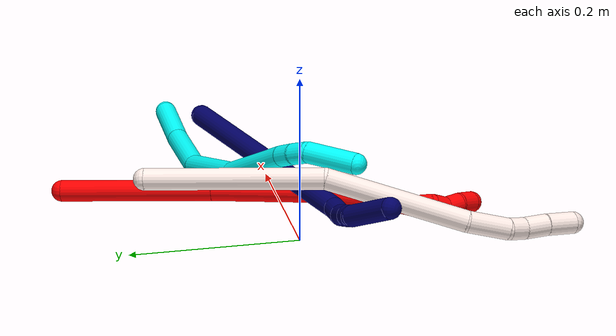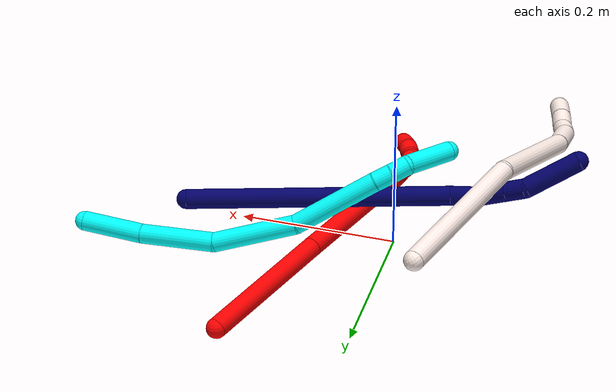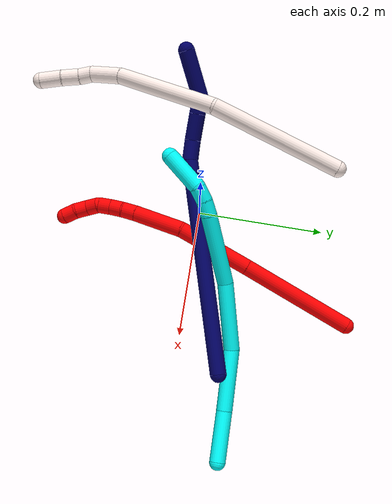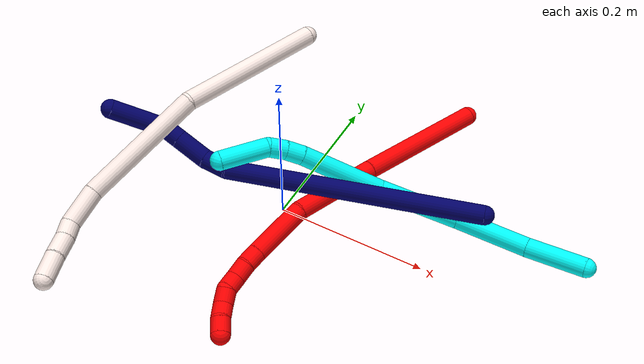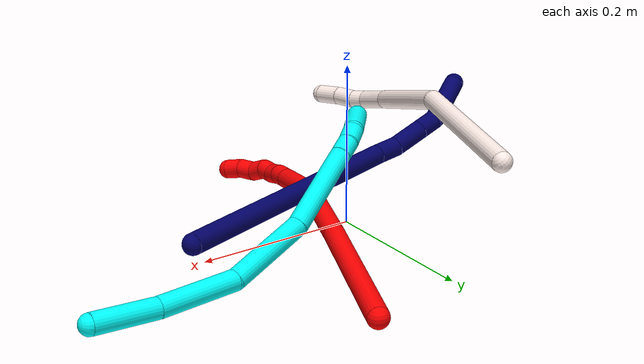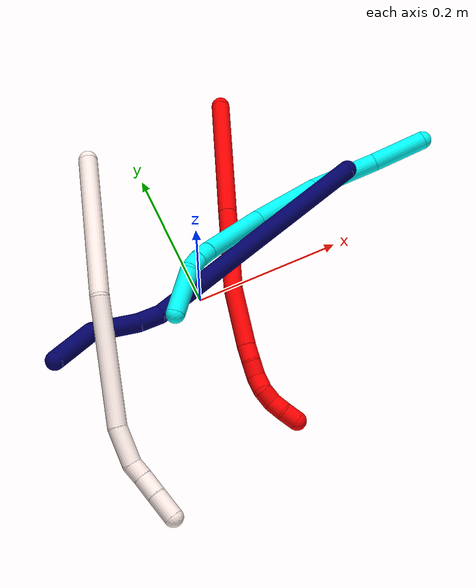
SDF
<sdf version="1.7">
 <world name="default">
  <model name="2">
   <static>0</static>
   <link name="2">
    <collision name="collision-cylinder-e_1_1_4">
     <pose>-0.027684 -0.085449 0.001557 1.55258 -0.313258 -0.307693</pose>
     <geometry><cylinder><radius>0.0125</radius><length>0.179671</length></cylinder></geometry>
     <surface>
      <friction><ode><mu>1.16</mu><mu2>1.16</mu2><slip1>0</slip1><slip2>0</slip2></ode></friction>
      <contact><ode><kp>1e+06</kp><kd>1</kd><max_vel>0</max_vel><min_depth>0.001</min_depth></ode></contact>
     </surface>
    </collision>
    <visual name="visual-cylinder-e_1_1_4">
     <pose>-0.027684 -0.085449 0.001557 1.55258 -0.313258 -0.307693</pose>
     <geometry><cylinder><radius>0.0125</radius><length>0.179671</length></cylinder></geometry>
     <material><ambient>1 0 0 1</ambient></material>
    </visual>
    <collision name="collision-cylinder-e_2_4_5">
     <pose>-0.073044 -0.227127 0.002657 1.57891 -0.304577 -0.307019</pose>
     <geometry><cylinder><radius>0.0125</radius><length>0.117886</length></cylinder></geometry>
     <surface>
      <friction><ode><mu>1.16</mu><mu2>1.16</mu2><slip1>0</slip1><slip2>0</slip2></ode></friction>
      <contact><ode><kp>1e+06</kp><kd>1</kd><max_vel>0</max_vel><min_depth>0.001</min_depth></ode></contact>
     </surface>
    </collision>
    <visual name="visual-cylinder-e_2_4_5">
     <pose>-0.073044 -0.227127 0.002657 1.57891 -0.304577 -0.307019</pose>
     <geometry><cylinder><radius>0.0125</radius><length>0.117886</length></cylinder></geometry>
     <material><ambient>1 0 0 1</ambient></material>
    </visual>
    <collision name="collision-cylinder-e_3_5_6">
     <pose>-0.096223 -0.321682 -0.005385 1.76619 -0.139933 -0.170209</pose>
     <geometry><cylinder><radius>0.0125</radius><length>0.078912</length></cylinder></geometry>
     <surface>
      <friction><ode><mu>1.16</mu><mu2>1.16</mu2><slip1>0</slip1><slip2>0</slip2></ode></friction>
      <contact><ode><kp>1e+06</kp><kd>1</kd><max_vel>0</max_vel><min_depth>0.001</min_depth></ode></contact>
     </surface>
    </collision>
    <visual name="visual-cylinder-e_3_5_6">
     <pose>-0.096223 -0.321682 -0.005385 1.76619 -0.139933 -0.170209</pose>
     <geometry><cylinder><radius>0.0125</radius><length>0.078912</length></cylinder></geometry>
     <material><ambient>1 0 0 1</ambient></material>
    </visual>
    <collision name="collision-cylinder-e_4_6_7">
     <pose>-0.102573 -0.370609 -0.014505 1.71463 -0.078902 -0.091138</pose>
     <geometry><cylinder><radius>0.0125</radius><length>0.021488</length></cylinder></geometry>
     <surface>
      <friction><ode><mu>1.16</mu><mu2>1.16</mu2><slip1>0</slip1><slip2>0</slip2></ode></friction>
      <contact><ode><kp>1e+06</kp><kd>1</kd><max_vel>0</max_vel><min_depth>0.001</min_depth></ode></contact>
     </surface>
    </collision>
    <visual name="visual-cylinder-e_4_6_7">
     <pose>-0.102573 -0.370609 -0.014505 1.71463 -0.078902 -0.091138</pose>
     <geometry><cylinder><radius>0.0125</radius><length>0.021488</length></cylinder></geometry>
     <material><ambient>1 0 0 1</ambient></material>
    </visual>
    <collision name="collision-cylinder-e_5_7_8">
     <pose>-0.10384 -0.391283 -0.019409 1.89346 -0.039499 -0.054849</pose>
     <geometry><cylinder><radius>0.0125</radius><length>0.021262</length></cylinder></geometry>
     <surface>
      <friction><ode><mu>1.16</mu><mu2>1.16</mu2><slip1>0</slip1><slip2>0</slip2></ode></friction>
      <contact><ode><kp>1e+06</kp><kd>1</kd><max_vel>0</max_vel><min_depth>0.001</min_depth></ode></contact>
     </surface>
    </collision>
    <visual name="visual-cylinder-e_5_7_8">
     <pose>-0.10384 -0.391283 -0.019409 1.89346 -0.039499 -0.054849</pose>
     <geometry><cylinder><radius>0.0125</radius><length>0.021262</length></cylinder></geometry>
     <material><ambient>1 0 0 1</ambient></material>
    </visual>
    <collision name="collision-cylinder-e_6_8_9">
     <pose>-0.103709 -0.411392 -0.023097 1.60258 0.054775 0.056543</pose>
     <geometry><cylinder><radius>0.0125</radius><length>0.02011</length></cylinder></geometry>
     <surface>
      <friction><ode><mu>1.16</mu><mu2>1.16</mu2><slip1>0</slip1><slip2>0</slip2></ode></friction>
      <contact><ode><kp>1e+06</kp><kd>1</kd><max_vel>0</max_vel><min_depth>0.001</min_depth></ode></contact>
     </surface>
    </collision>
    <visual name="visual-cylinder-e_6_8_9">
     <pose>-0.103709 -0.411392 -0.023097 1.60258 0.054775 0.056543</pose>
     <geometry><cylinder><radius>0.0125</radius><length>0.02011</length></cylinder></geometry>
     <material><ambient>1 0 0 1</ambient></material>
    </visual>
    <collision name="collision-cylinder-e_7_9_10">
     <pose>-0.099652 -0.429915 -0.027489 2.01822 0.356545 0.557731</pose>
     <geometry><cylinder><radius>0.0125</radius><length>0.020094</length></cylinder></geometry>
     <surface>
      <friction><ode><mu>1.16</mu><mu2>1.16</mu2><slip1>0</slip1><slip2>0</slip2></ode></friction>
      <contact><ode><kp>1e+06</kp><kd>1</kd><max_vel>0</max_vel><min_depth>0.001</min_depth></ode></contact>
     </surface>
    </collision>
    <visual name="visual-cylinder-e_7_9_10">
     <pose>-0.099652 -0.429915 -0.027489 2.01822 0.356545 0.557731</pose>
     <geometry><cylinder><radius>0.0125</radius><length>0.020094</length></cylinder></geometry>
     <material><ambient>1 0 0 1</ambient></material>
    </visual>
    <collision name="collision-cylinder-e_8_10_11">
     <pose>-0.091427 -0.447371 -0.031609 1.576 0.484382 0.486809</pose>
     <geometry><cylinder><radius>0.0125</radius><length>0.020266</length></cylinder></geometry>
     <surface>
      <friction><ode><mu>1.16</mu><mu2>1.16</mu2><slip1>0</slip1><slip2>0</slip2></ode></friction>
      <contact><ode><kp>1e+06</kp><kd>1</kd><max_vel>0</max_vel><min_depth>0.001</min_depth></ode></contact>
     </surface>
    </collision>
    <visual name="visual-cylinder-e_8_10_11">
     <pose>-0.091427 -0.447371 -0.031609 1.576 0.484382 0.486809</pose>
     <geometry><cylinder><radius>0.0125</radius><length>0.020266</length></cylinder></geometry>
     <material><ambient>1 0 0 1</ambient></material>
    </visual>
    <collision name="collision-cylinder-e_9_11_2">
     <pose>-0.080927 -0.464417 -0.033765 1.82614 0.605618 0.768658</pose>
     <geometry><cylinder><radius>0.0125</radius><length>0.020312</length></cylinder></geometry>
     <surface>
      <friction><ode><mu>1.16</mu><mu2>1.16</mu2><slip1>0</slip1><slip2>0</slip2></ode></friction>
      <contact><ode><kp>1e+06</kp><kd>1</kd><max_vel>0</max_vel><min_depth>0.001</min_depth></ode></contact>
     </surface>
    </collision>
    <visual name="visual-cylinder-e_9_11_2">
     <pose>-0.080927 -0.464417 -0.033765 1.82614 0.605618 0.768658</pose>
     <geometry><cylinder><radius>0.0125</radius><length>0.020312</length></cylinder></geometry>
     <material><ambient>1 0 0 1</ambient></material>
    </visual>
    <collision name="collision-sphere-2">
     <pose>-0.075145 -0.472496 -0.035874 0 -0 0</pose>
     <geometry><sphere><radius>0.0125</radius></sphere></geometry>
     <surface>
      <friction><ode><mu>1.16</mu><mu2>1.16</mu2><slip1>0</slip1><slip2>0</slip2></ode></friction>
      <contact><ode><kp>1e+06</kp><kd>1</kd><max_vel>0</max_vel><min_depth>0.001</min_depth></ode></contact>
     </surface>
    </collision>
    <visual name="visual-sphere-2">
     <pose>-0.075145 -0.472496 -0.035874 0 -0 0</pose>
     <geometry><sphere><radius>0.0125</radius></sphere></geometry>
     <material><ambient>1 0 0 1</ambient></material>
    </visual>
    <collision name="collision-sphere-11">
     <pose>-0.086708 -0.456338 -0.031656 0 -0 0</pose>
     <geometry><sphere><radius>0.0125</radius></sphere></geometry>
     <surface>
      <friction><ode><mu>1.16</mu><mu2>1.16</mu2><slip1>0</slip1><slip2>0</slip2></ode></friction>
      <contact><ode><kp>1e+06</kp><kd>1</kd><max_vel>0</max_vel><min_depth>0.001</min_depth></ode></contact>
     </surface>
    </collision>
    <visual name="visual-sphere-11">
     <pose>-0.086708 -0.456338 -0.031656 0 -0 0</pose>
     <geometry><sphere><radius>0.0125</radius></sphere></geometry>
     <material><ambient>1 0 0 1</ambient></material>
    </visual>
    <collision name="collision-sphere-10">
     <pose>-0.096145 -0.438404 -0.031562 0 -0 0</pose>
     <geometry><sphere><radius>0.0125</radius></sphere></geometry>
     <surface>
      <friction><ode><mu>1.16</mu><mu2>1.16</mu2><slip1>0</slip1><slip2>0</slip2></ode></friction>
      <contact><ode><kp>1e+06</kp><kd>1</kd><max_vel>0</max_vel><min_depth>0.001</min_depth></ode></contact>
     </surface>
    </collision>
    <visual name="visual-sphere-10">
     <pose>-0.096145 -0.438404 -0.031562 0 -0 0</pose>
     <geometry><sphere><radius>0.0125</radius></sphere></geometry>
     <material><ambient>1 0 0 1</ambient></material>
    </visual>
    <collision name="collision-sphere-9">
     <pose>-0.103159 -0.421427 -0.023416 0 -0 0</pose>
     <geometry><sphere><radius>0.0125</radius></sphere></geometry>
     <surface>
      <friction><ode><mu>1.16</mu><mu2>1.16</mu2><slip1>0</slip1><slip2>0</slip2></ode></friction>
      <contact><ode><kp>1e+06</kp><kd>1</kd><max_vel>0</max_vel><min_depth>0.001</min_depth></ode></contact>
     </surface>
    </collision>
    <visual name="visual-sphere-9">
     <pose>-0.103159 -0.421427 -0.023416 0 -0 0</pose>
     <geometry><sphere><radius>0.0125</radius></sphere></geometry>
     <material><ambient>1 0 0 1</ambient></material>
    </visual>
    <collision name="collision-sphere-4">
     <pose>-0.055367 -0.170899 0.003113 0 -0 0</pose>
     <geometry><sphere><radius>0.0125</radius></sphere></geometry>
     <surface>
      <friction><ode><mu>1.16</mu><mu2>1.16</mu2><slip1>0</slip1><slip2>0</slip2></ode></friction>
      <contact><ode><kp>1e+06</kp><kd>1</kd><max_vel>0</max_vel><min_depth>0.001</min_depth></ode></contact>
     </surface>
    </collision>
    <visual name="visual-sphere-4">
     <pose>-0.055367 -0.170899 0.003113 0 -0 0</pose>
     <geometry><sphere><radius>0.0125</radius></sphere></geometry>
     <material><ambient>1 0 0 1</ambient></material>
    </visual>
    <collision name="collision-sphere-1">
     <geometry><sphere><radius>0.0125</radius></sphere></geometry>
     <surface>
      <friction><ode><mu>1.16</mu><mu2>1.16</mu2><slip1>0</slip1><slip2>0</slip2></ode></friction>
      <contact><ode><kp>1e+06</kp><kd>1</kd><max_vel>0</max_vel><min_depth>0.001</min_depth></ode></contact>
     </surface>
    </collision>
    <visual name="visual-sphere-1">
     <geometry><sphere><radius>0.0125</radius></sphere></geometry>
     <material><ambient>1 0 0 1</ambient></material>
    </visual>
    <collision name="collision-sphere-8">
     <pose>-0.10426 -0.401358 -0.022778 0 -0 0</pose>
     <geometry><sphere><radius>0.0125</radius></sphere></geometry>
     <surface>
      <friction><ode><mu>1.16</mu><mu2>1.16</mu2><slip1>0</slip1><slip2>0</slip2></ode></friction>
      <contact><ode><kp>1e+06</kp><kd>1</kd><max_vel>0</max_vel><min_depth>0.001</min_depth></ode></contact>
     </surface>
    </collision>
    <visual name="visual-sphere-8">
     <pose>-0.10426 -0.401358 -0.022778 0 -0 0</pose>
     <geometry><sphere><radius>0.0125</radius></sphere></geometry>
     <material><ambient>1 0 0 1</ambient></material>
    </visual>
    <collision name="collision-sphere-5">
     <pose>-0.09072 -0.283355 0.002201 0 -0 0</pose>
     <geometry><sphere><radius>0.0125</radius></sphere></geometry>
     <surface>
      <friction><ode><mu>1.16</mu><mu2>1.16</mu2><slip1>0</slip1><slip2>0</slip2></ode></friction>
      <contact><ode><kp>1e+06</kp><kd>1</kd><max_vel>0</max_vel><min_depth>0.001</min_depth></ode></contact>
     </surface>
    </collision>
    <visual name="visual-sphere-5">
     <pose>-0.09072 -0.283355 0.002201 0 -0 0</pose>
     <geometry><sphere><radius>0.0125</radius></sphere></geometry>
     <material><ambient>1 0 0 1</ambient></material>
    </visual>
    <collision name="collision-sphere-6">
     <pose>-0.101726 -0.360009 -0.01297 0 -0 0</pose>
     <geometry><sphere><radius>0.0125</radius></sphere></geometry>
     <surface>
      <friction><ode><mu>1.16</mu><mu2>1.16</mu2><slip1>0</slip1><slip2>0</slip2></ode></friction>
      <contact><ode><kp>1e+06</kp><kd>1</kd><max_vel>0</max_vel><min_depth>0.001</min_depth></ode></contact>
     </surface>
    </collision>
    <visual name="visual-sphere-6">
     <pose>-0.101726 -0.360009 -0.01297 0 -0 0</pose>
     <geometry><sphere><radius>0.0125</radius></sphere></geometry>
     <material><ambient>1 0 0 1</ambient></material>
    </visual>
    <collision name="collision-sphere-7">
     <pose>-0.10342 -0.381209 -0.016041 0 -0 0</pose>
     <geometry><sphere><radius>0.0125</radius></sphere></geometry>
     <surface>
      <friction><ode><mu>1.16</mu><mu2>1.16</mu2><slip1>0</slip1><slip2>0</slip2></ode></friction>
      <contact><ode><kp>1e+06</kp><kd>1</kd><max_vel>0</max_vel><min_depth>0.001</min_depth></ode></contact>
     </surface>
    </collision>
    <visual name="visual-sphere-7">
     <pose>-0.10342 -0.381209 -0.016041 0 -0 0</pose>
     <geometry><sphere><radius>0.0125</radius></sphere></geometry>
     <material><ambient>1 0 0 1</ambient></material>
    </visual>
    <inertial>
     <pose>-0.066349 -0.238413 -0.005799 0 -0 0</pose>
     <mass>0.5</mass>
     <inertia>
      <ixx>0.000431</ixx>
      <ixy>0</ixy>
      <ixz>0</ixz>
      <iyy>-0.000166</iyy>
      <iyz>0</iyz>
      <izz>0.000847</izz>
     </inertia>
    </inertial>
   </link>
   <pose>0.145127 0.254556 0.024191 -0.04092 0.050781 -0.058553</pose>
  </model>
  <model name="3">
   <static>0</static>
   <link name="3">
    <collision name="collision-cylinder-e_1_1_4">
     <pose>-0.004501 -0.002953 -0.038275 3.0646 -0.116711 -1.97592</pose>
     <geometry><cylinder><radius>0.0125</radius><length>0.077304</length></cylinder></geometry>
     <surface>
      <friction><ode><mu>1.16</mu><mu2>1.16</mu2><slip1>0</slip1><slip2>0</slip2></ode></friction>
      <contact><ode><kp>1e+06</kp><kd>1</kd><max_vel>0</max_vel><min_depth>0.001</min_depth></ode></contact>
     </surface>
    </collision>
    <visual name="visual-cylinder-e_1_1_4">
     <pose>-0.004501 -0.002953 -0.038275 3.0646 -0.116711 -1.97592</pose>
     <geometry><cylinder><radius>0.0125</radius><length>0.077304</length></cylinder></geometry>
     <material><ambient>0.003922 1 0.996078 1</ambient></material>
    </visual>
    <collision name="collision-cylinder-e_2_4_5">
     <pose>-0.019633 -0.01013 -0.122929 3.05074 -0.224439 -2.37478</pose>
     <geometry><cylinder><radius>0.0125</radius><length>0.095536</length></cylinder></geometry>
     <surface>
      <friction><ode><mu>1.16</mu><mu2>1.16</mu2><slip1>0</slip1><slip2>0</slip2></ode></friction>
      <contact><ode><kp>1e+06</kp><kd>1</kd><max_vel>0</max_vel><min_depth>0.001</min_depth></ode></contact>
     </surface>
    </collision>
    <visual name="visual-cylinder-e_2_4_5">
     <pose>-0.019633 -0.01013 -0.122929 3.05074 -0.224439 -2.37478</pose>
     <geometry><cylinder><radius>0.0125</radius><length>0.095536</length></cylinder></geometry>
     <material><ambient>0.003922 1 0.996078 1</ambient></material>
    </visual>
    <collision name="collision-cylinder-e_3_5_6">
     <pose>-0.054434 -0.029356 -0.214394 2.8204 -0.470557 -1.95306</pose>
     <geometry><cylinder><radius>0.0125</radius><length>0.106621</length></cylinder></geometry>
     <surface>
      <friction><ode><mu>1.16</mu><mu2>1.16</mu2><slip1>0</slip1><slip2>0</slip2></ode></friction>
      <contact><ode><kp>1e+06</kp><kd>1</kd><max_vel>0</max_vel><min_depth>0.001</min_depth></ode></contact>
     </surface>
    </collision>
    <visual name="visual-cylinder-e_3_5_6">
     <pose>-0.054434 -0.029356 -0.214394 2.8204 -0.470557 -1.95306</pose>
     <geometry><cylinder><radius>0.0125</radius><length>0.106621</length></cylinder></geometry>
     <material><ambient>0.003922 1 0.996078 1</ambient></material>
    </visual>
    <collision name="collision-cylinder-e_4_6_7">
     <pose>-0.114604 -0.065471 -0.297287 2.63227 -0.693571 -1.89314</pose>
     <geometry><cylinder><radius>0.0125</radius><length>0.112624</length></cylinder></geometry>
     <surface>
      <friction><ode><mu>1.16</mu><mu2>1.16</mu2><slip1>0</slip1><slip2>0</slip2></ode></friction>
      <contact><ode><kp>1e+06</kp><kd>1</kd><max_vel>0</max_vel><min_depth>0.001</min_depth></ode></contact>
     </surface>
    </collision>
    <visual name="visual-cylinder-e_4_6_7">
     <pose>-0.114604 -0.065471 -0.297287 2.63227 -0.693571 -1.89314</pose>
     <geometry><cylinder><radius>0.0125</radius><length>0.112624</length></cylinder></geometry>
     <material><ambient>0.003922 1 0.996078 1</ambient></material>
    </visual>
    <collision name="collision-cylinder-e_5_7_8">
     <pose>-0.157049 -0.091671 -0.342873 2.56252 -0.606225 -1.61939</pose>
     <geometry><cylinder><radius>0.0125</radius><length>0.022622</length></cylinder></geometry>
     <surface>
      <friction><ode><mu>1.16</mu><mu2>1.16</mu2><slip1>0</slip1><slip2>0</slip2></ode></friction>
      <contact><ode><kp>1e+06</kp><kd>1</kd><max_vel>0</max_vel><min_depth>0.001</min_depth></ode></contact>
     </surface>
    </collision>
    <visual name="visual-cylinder-e_5_7_8">
     <pose>-0.157049 -0.091671 -0.342873 2.56252 -0.606225 -1.61939</pose>
     <geometry><cylinder><radius>0.0125</radius><length>0.022622</length></cylinder></geometry>
     <material><ambient>0.003922 1 0.996078 1</ambient></material>
    </visual>
    <collision name="collision-cylinder-e_6_8_9">
     <pose>-0.169402 -0.103426 -0.357888 2.39697 -0.540864 -1.23465</pose>
     <geometry><cylinder><radius>0.0125</radius><length>0.022954</length></cylinder></geometry>
     <surface>
      <friction><ode><mu>1.16</mu><mu2>1.16</mu2><slip1>0</slip1><slip2>0</slip2></ode></friction>
      <contact><ode><kp>1e+06</kp><kd>1</kd><max_vel>0</max_vel><min_depth>0.001</min_depth></ode></contact>
     </surface>
    </collision>
    <visual name="visual-cylinder-e_6_8_9">
     <pose>-0.169402 -0.103426 -0.357888 2.39697 -0.540864 -1.23465</pose>
     <geometry><cylinder><radius>0.0125</radius><length>0.022954</length></cylinder></geometry>
     <material><ambient>0.003922 1 0.996078 1</ambient></material>
    </visual>
    <collision name="collision-cylinder-e_7_9_2">
     <pose>-0.179527 -0.134911 -0.383502 2.20825 -0.135665 -0.268088</pose>
     <geometry><cylinder><radius>0.0125</radius><length>0.062338</length></cylinder></geometry>
     <surface>
      <friction><ode><mu>1.16</mu><mu2>1.16</mu2><slip1>0</slip1><slip2>0</slip2></ode></friction>
      <contact><ode><kp>1e+06</kp><kd>1</kd><max_vel>0</max_vel><min_depth>0.001</min_depth></ode></contact>
     </surface>
    </collision>
    <visual name="visual-cylinder-e_7_9_2">
     <pose>-0.179527 -0.134911 -0.383502 2.20825 -0.135665 -0.268088</pose>
     <geometry><cylinder><radius>0.0125</radius><length>0.062338</length></cylinder></geometry>
     <material><ambient>0.003922 1 0.996078 1</ambient></material>
    </visual>
    <collision name="collision-sphere-2">
     <pose>-0.183743 -0.159728 -0.401882 0 -0 0</pose>
     <geometry><sphere><radius>0.0125</radius></sphere></geometry>
     <surface>
      <friction><ode><mu>1.16</mu><mu2>1.16</mu2><slip1>0</slip1><slip2>0</slip2></ode></friction>
      <contact><ode><kp>1e+06</kp><kd>1</kd><max_vel>0</max_vel><min_depth>0.001</min_depth></ode></contact>
     </surface>
    </collision>
    <visual name="visual-sphere-2">
     <pose>-0.183743 -0.159728 -0.401882 0 -0 0</pose>
     <geometry><sphere><radius>0.0125</radius></sphere></geometry>
     <material><ambient>0.003922 1 0.996078 1</ambient></material>
    </visual>
    <collision name="collision-sphere-9">
     <pose>-0.175312 -0.110093 -0.365123 0 -0 0</pose>
     <geometry><sphere><radius>0.0125</radius></sphere></geometry>
     <surface>
      <friction><ode><mu>1.16</mu><mu2>1.16</mu2><slip1>0</slip1><slip2>0</slip2></ode></friction>
      <contact><ode><kp>1e+06</kp><kd>1</kd><max_vel>0</max_vel><min_depth>0.001</min_depth></ode></contact>
     </surface>
    </collision>
    <visual name="visual-sphere-9">
     <pose>-0.175312 -0.110093 -0.365123 0 -0 0</pose>
     <geometry><sphere><radius>0.0125</radius></sphere></geometry>
     <material><ambient>0.003922 1 0.996078 1</ambient></material>
    </visual>
    <collision name="collision-sphere-4">
     <pose>-0.009002 -0.005905 -0.076551 0 -0 0</pose>
     <geometry><sphere><radius>0.0125</radius></sphere></geometry>
     <surface>
      <friction><ode><mu>1.16</mu><mu2>1.16</mu2><slip1>0</slip1><slip2>0</slip2></ode></friction>
      <contact><ode><kp>1e+06</kp><kd>1</kd><max_vel>0</max_vel><min_depth>0.001</min_depth></ode></contact>
     </surface>
    </collision>
    <visual name="visual-sphere-4">
     <pose>-0.009002 -0.005905 -0.076551 0 -0 0</pose>
     <geometry><sphere><radius>0.0125</radius></sphere></geometry>
     <material><ambient>0.003922 1 0.996078 1</ambient></material>
    </visual>
    <collision name="collision-sphere-1">
     <geometry><sphere><radius>0.0125</radius></sphere></geometry>
     <surface>
      <friction><ode><mu>1.16</mu><mu2>1.16</mu2><slip1>0</slip1><slip2>0</slip2></ode></friction>
      <contact><ode><kp>1e+06</kp><kd>1</kd><max_vel>0</max_vel><min_depth>0.001</min_depth></ode></contact>
     </surface>
    </collision>
    <visual name="visual-sphere-1">
     <geometry><sphere><radius>0.0125</radius></sphere></geometry>
     <material><ambient>0.003922 1 0.996078 1</ambient></material>
    </visual>
    <collision name="collision-sphere-8">
     <pose>-0.163493 -0.096758 -0.350653 0 -0 0</pose>
     <geometry><sphere><radius>0.0125</radius></sphere></geometry>
     <surface>
      <friction><ode><mu>1.16</mu><mu2>1.16</mu2><slip1>0</slip1><slip2>0</slip2></ode></friction>
      <contact><ode><kp>1e+06</kp><kd>1</kd><max_vel>0</max_vel><min_depth>0.001</min_depth></ode></contact>
     </surface>
    </collision>
    <visual name="visual-sphere-8">
     <pose>-0.163493 -0.096758 -0.350653 0 -0 0</pose>
     <geometry><sphere><radius>0.0125</radius></sphere></geometry>
     <material><ambient>0.003922 1 0.996078 1</ambient></material>
    </visual>
    <collision name="collision-sphere-5">
     <pose>-0.030264 -0.014356 -0.169307 0 -0 0</pose>
     <geometry><sphere><radius>0.0125</radius></sphere></geometry>
     <surface>
      <friction><ode><mu>1.16</mu><mu2>1.16</mu2><slip1>0</slip1><slip2>0</slip2></ode></friction>
      <contact><ode><kp>1e+06</kp><kd>1</kd><max_vel>0</max_vel><min_depth>0.001</min_depth></ode></contact>
     </surface>
    </collision>
    <visual name="visual-sphere-5">
     <pose>-0.030264 -0.014356 -0.169307 0 -0 0</pose>
     <geometry><sphere><radius>0.0125</radius></sphere></geometry>
     <material><ambient>0.003922 1 0.996078 1</ambient></material>
    </visual>
    <collision name="collision-sphere-6">
     <pose>-0.078605 -0.044357 -0.25948 0 -0 0</pose>
     <geometry><sphere><radius>0.0125</radius></sphere></geometry>
     <surface>
      <friction><ode><mu>1.16</mu><mu2>1.16</mu2><slip1>0</slip1><slip2>0</slip2></ode></friction>
      <contact><ode><kp>1e+06</kp><kd>1</kd><max_vel>0</max_vel><min_depth>0.001</min_depth></ode></contact>
     </surface>
    </collision>
    <visual name="visual-sphere-6">
     <pose>-0.078605 -0.044357 -0.25948 0 -0 0</pose>
     <geometry><sphere><radius>0.0125</radius></sphere></geometry>
     <material><ambient>0.003922 1 0.996078 1</ambient></material>
    </visual>
    <collision name="collision-sphere-7">
     <pose>-0.150604 -0.086584 -0.335093 0 -0 0</pose>
     <geometry><sphere><radius>0.0125</radius></sphere></geometry>
     <surface>
      <friction><ode><mu>1.16</mu><mu2>1.16</mu2><slip1>0</slip1><slip2>0</slip2></ode></friction>
      <contact><ode><kp>1e+06</kp><kd>1</kd><max_vel>0</max_vel><min_depth>0.001</min_depth></ode></contact>
     </surface>
    </collision>
    <visual name="visual-sphere-7">
     <pose>-0.150604 -0.086584 -0.335093 0 -0 0</pose>
     <geometry><sphere><radius>0.0125</radius></sphere></geometry>
     <material><ambient>0.003922 1 0.996078 1</ambient></material>
    </visual>
    <inertial>
     <pose>-0.079134 -0.049115 -0.221844 0 -0 0</pose>
     <mass>0.5</mass>
     <inertia>
      <ixx>-0.000403</ixx>
      <ixy>0</ixy>
      <ixz>0</ixz>
      <iyy>-0.000105</iyy>
      <iyz>0</iyz>
      <izz>0.000228</izz>
     </inertia>
    </inertial>
   </link>
   <pose>0.38232 0.089298 0.016773 0.389536 1.37641 0.326675</pose>
  </model>
  <model name="7">
   <static>0</static>
   <link name="7">
    <collision name="collision-cylinder-e_1_1_4">
     <pose>-0.069523 0.026639 -0.147143 -2.96249 -0.435201 2.37008</pose>
     <geometry><cylinder><radius>0.0125</radius><length>0.329812</length></cylinder></geometry>
     <surface>
      <friction><ode><mu>1.16</mu><mu2>1.16</mu2><slip1>0</slip1><slip2>0</slip2></ode></friction>
      <contact><ode><kp>1e+06</kp><kd>1</kd><max_vel>0</max_vel><min_depth>0.001</min_depth></ode></contact>
     </surface>
    </collision>
    <visual name="visual-cylinder-e_1_1_4">
     <pose>-0.069523 0.026639 -0.147143 -2.96249 -0.435201 2.37008</pose>
     <geometry><cylinder><radius>0.0125</radius><length>0.329812</length></cylinder></geometry>
     <material><ambient>0.003922 0 0.403922 1</ambient></material>
    </visual>
    <collision name="collision-cylinder-e_2_4_5">
     <pose>-0.149316 0.054214 -0.306355 -3.06412 -0.703488 2.93117</pose>
     <geometry><cylinder><radius>0.0125</radius><length>0.031751</length></cylinder></geometry>
     <surface>
      <friction><ode><mu>1.16</mu><mu2>1.16</mu2><slip1>0</slip1><slip2>0</slip2></ode></friction>
      <contact><ode><kp>1e+06</kp><kd>1</kd><max_vel>0</max_vel><min_depth>0.001</min_depth></ode></contact>
     </surface>
    </collision>
    <visual name="visual-cylinder-e_2_4_5">
     <pose>-0.149316 0.054214 -0.306355 -3.06412 -0.703488 2.93117</pose>
     <geometry><cylinder><radius>0.0125</radius><length>0.031751</length></cylinder></geometry>
     <material><ambient>0.003922 0 0.403922 1</ambient></material>
    </visual>
    <collision name="collision-cylinder-e_3_5_6">
     <pose>-0.173866 0.051155 -0.333 2.87398 -0.75711 -2.48892</pose>
     <geometry><cylinder><radius>0.0125</radius><length>0.041584</length></cylinder></geometry>
     <surface>
      <friction><ode><mu>1.16</mu><mu2>1.16</mu2><slip1>0</slip1><slip2>0</slip2></ode></friction>
      <contact><ode><kp>1e+06</kp><kd>1</kd><max_vel>0</max_vel><min_depth>0.001</min_depth></ode></contact>
     </surface>
    </collision>
    <visual name="visual-cylinder-e_3_5_6">
     <pose>-0.173866 0.051155 -0.333 2.87398 -0.75711 -2.48892</pose>
     <geometry><cylinder><radius>0.0125</radius><length>0.041584</length></cylinder></geometry>
     <material><ambient>0.003922 0 0.403922 1</ambient></material>
    </visual>
    <collision name="collision-cylinder-e_4_6_7">
     <pose>-0.196657 0.044766 -0.356252 2.87251 -0.757333 -2.48573</pose>
     <geometry><cylinder><radius>0.0125</radius><length>0.024776</length></cylinder></geometry>
     <surface>
      <friction><ode><mu>1.16</mu><mu2>1.16</mu2><slip1>0</slip1><slip2>0</slip2></ode></friction>
      <contact><ode><kp>1e+06</kp><kd>1</kd><max_vel>0</max_vel><min_depth>0.001</min_depth></ode></contact>
     </surface>
    </collision>
    <visual name="visual-cylinder-e_4_6_7">
     <pose>-0.196657 0.044766 -0.356252 2.87251 -0.757333 -2.48573</pose>
     <geometry><cylinder><radius>0.0125</radius><length>0.024776</length></cylinder></geometry>
     <material><ambient>0.003922 0 0.403922 1</ambient></material>
    </visual>
    <collision name="collision-cylinder-e_5_7_2">
     <pose>-0.215144 0.032183 -0.398027 2.84291 -0.280501 -1.50716</pose>
     <geometry><cylinder><radius>0.0125</radius><length>0.072077</length></cylinder></geometry>
     <surface>
      <friction><ode><mu>1.16</mu><mu2>1.16</mu2><slip1>0</slip1><slip2>0</slip2></ode></friction>
      <contact><ode><kp>1e+06</kp><kd>1</kd><max_vel>0</max_vel><min_depth>0.001</min_depth></ode></contact>
     </surface>
    </collision>
    <visual name="visual-cylinder-e_5_7_2">
     <pose>-0.215144 0.032183 -0.398027 2.84291 -0.280501 -1.50716</pose>
     <geometry><cylinder><radius>0.0125</radius><length>0.072077</length></cylinder></geometry>
     <material><ambient>0.003922 0 0.403922 1</ambient></material>
    </visual>
    <collision name="collision-sphere-2">
     <pose>-0.22512 0.021993 -0.431124 0 -0 0</pose>
     <geometry><sphere><radius>0.0125</radius></sphere></geometry>
     <surface>
      <friction><ode><mu>1.16</mu><mu2>1.16</mu2><slip1>0</slip1><slip2>0</slip2></ode></friction>
      <contact><ode><kp>1e+06</kp><kd>1</kd><max_vel>0</max_vel><min_depth>0.001</min_depth></ode></contact>
     </surface>
    </collision>
    <visual name="visual-sphere-2">
     <pose>-0.22512 0.021993 -0.431124 0 -0 0</pose>
     <geometry><sphere><radius>0.0125</radius></sphere></geometry>
     <material><ambient>0.003922 0 0.403922 1</ambient></material>
    </visual>
    <collision name="collision-sphere-7">
     <pose>-0.205167 0.042373 -0.36493 0 -0 0</pose>
     <geometry><sphere><radius>0.0125</radius></sphere></geometry>
     <surface>
      <friction><ode><mu>1.16</mu><mu2>1.16</mu2><slip1>0</slip1><slip2>0</slip2></ode></friction>
      <contact><ode><kp>1e+06</kp><kd>1</kd><max_vel>0</max_vel><min_depth>0.001</min_depth></ode></contact>
     </surface>
    </collision>
    <visual name="visual-sphere-7">
     <pose>-0.205167 0.042373 -0.36493 0 -0 0</pose>
     <geometry><sphere><radius>0.0125</radius></sphere></geometry>
     <material><ambient>0.003922 0 0.403922 1</ambient></material>
    </visual>
    <collision name="collision-sphere-6">
     <pose>-0.188146 0.047159 -0.347574 0 -0 0</pose>
     <geometry><sphere><radius>0.0125</radius></sphere></geometry>
     <surface>
      <friction><ode><mu>1.16</mu><mu2>1.16</mu2><slip1>0</slip1><slip2>0</slip2></ode></friction>
      <contact><ode><kp>1e+06</kp><kd>1</kd><max_vel>0</max_vel><min_depth>0.001</min_depth></ode></contact>
     </surface>
    </collision>
    <visual name="visual-sphere-6">
     <pose>-0.188146 0.047159 -0.347574 0 -0 0</pose>
     <geometry><sphere><radius>0.0125</radius></sphere></geometry>
     <material><ambient>0.003922 0 0.403922 1</ambient></material>
    </visual>
    <collision name="collision-sphere-5">
     <pose>-0.159585 0.055151 -0.318426 0 -0 0</pose>
     <geometry><sphere><radius>0.0125</radius></sphere></geometry>
     <surface>
      <friction><ode><mu>1.16</mu><mu2>1.16</mu2><slip1>0</slip1><slip2>0</slip2></ode></friction>
      <contact><ode><kp>1e+06</kp><kd>1</kd><max_vel>0</max_vel><min_depth>0.001</min_depth></ode></contact>
     </surface>
    </collision>
    <visual name="visual-sphere-5">
     <pose>-0.159585 0.055151 -0.318426 0 -0 0</pose>
     <geometry><sphere><radius>0.0125</radius></sphere></geometry>
     <material><ambient>0.003922 0 0.403922 1</ambient></material>
    </visual>
    <collision name="collision-sphere-1">
     <geometry><sphere><radius>0.0125</radius></sphere></geometry>
     <surface>
      <friction><ode><mu>1.16</mu><mu2>1.16</mu2><slip1>0</slip1><slip2>0</slip2></ode></friction>
      <contact><ode><kp>1e+06</kp><kd>1</kd><max_vel>0</max_vel><min_depth>0.001</min_depth></ode></contact>
     </surface>
    </collision>
    <visual name="visual-sphere-1">
     <geometry><sphere><radius>0.0125</radius></sphere></geometry>
     <material><ambient>0.003922 0 0.403922 1</ambient></material>
    </visual>
    <collision name="collision-sphere-4">
     <pose>-0.139046 0.053278 -0.294285 0 -0 0</pose>
     <geometry><sphere><radius>0.0125</radius></sphere></geometry>
     <surface>
      <friction><ode><mu>1.16</mu><mu2>1.16</mu2><slip1>0</slip1><slip2>0</slip2></ode></friction>
      <contact><ode><kp>1e+06</kp><kd>1</kd><max_vel>0</max_vel><min_depth>0.001</min_depth></ode></contact>
     </surface>
    </collision>
    <visual name="visual-sphere-4">
     <pose>-0.139046 0.053278 -0.294285 0 -0 0</pose>
     <geometry><sphere><radius>0.0125</radius></sphere></geometry>
     <material><ambient>0.003922 0 0.403922 1</ambient></material>
    </visual>
    <inertial>
     <pose>-0.11056 0.032126 -0.219238 0 -0 0</pose>
     <mass>0.5</mass>
     <inertia>
      <ixx>-0.000114</ixx>
      <ixy>0</ixy>
      <ixz>0</ixz>
      <iyy>0.004152</iyy>
      <iyz>0</iyz>
      <izz>0.000777</izz>
     </inertia>
    </inertial>
   </link>
   <pose>0.250266 0.068134 0.062103 -1.6928 0.155037 -0.843093</pose>
  </model>
  <model name="11">
   <static>0</static>
   <link name="11">
    <collision name="collision-cylinder-e_1_1_4">
     <pose>-0.032249 -0.096313 -0.000466 1.57563 -0.323093 -0.324633</pose>
     <geometry><cylinder><radius>0.0125</radius><length>0.20314</length></cylinder></geometry>
     <surface>
      <friction><ode><mu>1.16</mu><mu2>1.16</mu2><slip1>0</slip1><slip2>0</slip2></ode></friction>
      <contact><ode><kp>1e+06</kp><kd>1</kd><max_vel>0</max_vel><min_depth>0.001</min_depth></ode></contact>
     </surface>
    </collision>
    <visual name="visual-cylinder-e_1_1_4">
     <pose>-0.032249 -0.096313 -0.000466 1.57563 -0.323093 -0.324633</pose>
     <geometry><cylinder><radius>0.0125</radius><length>0.20314</length></cylinder></geometry>
     <material><ambient>1 0.933333 0.909804 1</ambient></material>
    </visual>
    <collision name="collision-cylinder-e_2_4_5">
     <pose>-0.071584 -0.272273 -0.021348 1.82173 -0.08598 -0.110754</pose>
     <geometry><cylinder><radius>0.0125</radius><length>0.165053</length></cylinder></geometry>
     <surface>
      <friction><ode><mu>1.16</mu><mu2>1.16</mu2><slip1>0</slip1><slip2>0</slip2></ode></friction>
      <contact><ode><kp>1e+06</kp><kd>1</kd><max_vel>0</max_vel><min_depth>0.001</min_depth></ode></contact>
     </surface>
    </collision>
    <visual name="visual-cylinder-e_2_4_5">
     <pose>-0.071584 -0.272273 -0.021348 1.82173 -0.08598 -0.110754</pose>
     <geometry><cylinder><radius>0.0125</radius><length>0.165053</length></cylinder></geometry>
     <material><ambient>1 0.933333 0.909804 1</ambient></material>
    </visual>
    <collision name="collision-cylinder-e_3_5_6">
     <pose>-0.076396 -0.376132 -0.043839 1.65629 0.093345 0.101673</pose>
     <geometry><cylinder><radius>0.0125</radius><length>0.048813</length></cylinder></geometry>
     <surface>
      <friction><ode><mu>1.16</mu><mu2>1.16</mu2><slip1>0</slip1><slip2>0</slip2></ode></friction>
      <contact><ode><kp>1e+06</kp><kd>1</kd><max_vel>0</max_vel><min_depth>0.001</min_depth></ode></contact>
     </surface>
    </collision>
    <visual name="visual-cylinder-e_3_5_6">
     <pose>-0.076396 -0.376132 -0.043839 1.65629 0.093345 0.101673</pose>
     <geometry><cylinder><radius>0.0125</radius><length>0.048813</length></cylinder></geometry>
     <material><ambient>1 0.933333 0.909804 1</ambient></material>
    </visual>
    <collision name="collision-cylinder-e_4_6_7">
     <pose>-0.071188 -0.410016 -0.044112 1.38663 0.289661 0.241208</pose>
     <geometry><cylinder><radius>0.0125</radius><length>0.020534</length></cylinder></geometry>
     <surface>
      <friction><ode><mu>1.16</mu><mu2>1.16</mu2><slip1>0</slip1><slip2>0</slip2></ode></friction>
      <contact><ode><kp>1e+06</kp><kd>1</kd><max_vel>0</max_vel><min_depth>0.001</min_depth></ode></contact>
     </surface>
    </collision>
    <visual name="visual-cylinder-e_4_6_7">
     <pose>-0.071188 -0.410016 -0.044112 1.38663 0.289661 0.241208</pose>
     <geometry><cylinder><radius>0.0125</radius><length>0.020534</length></cylinder></geometry>
     <material><ambient>1 0.933333 0.909804 1</ambient></material>
    </visual>
    <collision name="collision-cylinder-e_5_7_8">
     <pose>-0.066107 -0.43322 -0.038775 1.31526 0.152482 0.117856</pose>
     <geometry><cylinder><radius>0.0125</radius><length>0.028298</length></cylinder></geometry>
     <surface>
      <friction><ode><mu>1.16</mu><mu2>1.16</mu2><slip1>0</slip1><slip2>0</slip2></ode></friction>
      <contact><ode><kp>1e+06</kp><kd>1</kd><max_vel>0</max_vel><min_depth>0.001</min_depth></ode></contact>
     </surface>
    </collision>
    <visual name="visual-cylinder-e_5_7_8">
     <pose>-0.066107 -0.43322 -0.038775 1.31526 0.152482 0.117856</pose>
     <geometry><cylinder><radius>0.0125</radius><length>0.028298</length></cylinder></geometry>
     <material><ambient>1 0.933333 0.909804 1</ambient></material>
    </visual>
    <collision name="collision-cylinder-e_6_8_2">
     <pose>-0.060276 -0.463112 -0.031998 1.37515 0.217238 0.178639</pose>
     <geometry><cylinder><radius>0.0125</radius><length>0.034162</length></cylinder></geometry>
     <surface>
      <friction><ode><mu>1.16</mu><mu2>1.16</mu2><slip1>0</slip1><slip2>0</slip2></ode></friction>
      <contact><ode><kp>1e+06</kp><kd>1</kd><max_vel>0</max_vel><min_depth>0.001</min_depth></ode></contact>
     </surface>
    </collision>
    <visual name="visual-cylinder-e_6_8_2">
     <pose>-0.060276 -0.463112 -0.031998 1.37515 0.217238 0.178639</pose>
     <geometry><cylinder><radius>0.0125</radius><length>0.034162</length></cylinder></geometry>
     <material><ambient>1 0.933333 0.909804 1</ambient></material>
    </visual>
    <collision name="collision-sphere-2">
     <pose>-0.056595 -0.479473 -0.028756 0 -0 0</pose>
     <geometry><sphere><radius>0.0125</radius></sphere></geometry>
     <surface>
      <friction><ode><mu>1.16</mu><mu2>1.16</mu2><slip1>0</slip1><slip2>0</slip2></ode></friction>
      <contact><ode><kp>1e+06</kp><kd>1</kd><max_vel>0</max_vel><min_depth>0.001</min_depth></ode></contact>
     </surface>
    </collision>
    <visual name="visual-sphere-2">
     <pose>-0.056595 -0.479473 -0.028756 0 -0 0</pose>
     <geometry><sphere><radius>0.0125</radius></sphere></geometry>
     <material><ambient>1 0.933333 0.909804 1</ambient></material>
    </visual>
    <collision name="collision-sphere-4">
     <pose>-0.064497 -0.192627 -0.000932 0 -0 0</pose>
     <geometry><sphere><radius>0.0125</radius></sphere></geometry>
     <surface>
      <friction><ode><mu>1.16</mu><mu2>1.16</mu2><slip1>0</slip1><slip2>0</slip2></ode></friction>
      <contact><ode><kp>1e+06</kp><kd>1</kd><max_vel>0</max_vel><min_depth>0.001</min_depth></ode></contact>
     </surface>
    </collision>
    <visual name="visual-sphere-4">
     <pose>-0.064497 -0.192627 -0.000932 0 -0 0</pose>
     <geometry><sphere><radius>0.0125</radius></sphere></geometry>
     <material><ambient>1 0.933333 0.909804 1</ambient></material>
    </visual>
    <collision name="collision-sphere-1">
     <geometry><sphere><radius>0.0125</radius></sphere></geometry>
     <surface>
      <friction><ode><mu>1.16</mu><mu2>1.16</mu2><slip1>0</slip1><slip2>0</slip2></ode></friction>
      <contact><ode><kp>1e+06</kp><kd>1</kd><max_vel>0</max_vel><min_depth>0.001</min_depth></ode></contact>
     </surface>
    </collision>
    <visual name="visual-sphere-1">
     <geometry><sphere><radius>0.0125</radius></sphere></geometry>
     <material><ambient>1 0.933333 0.909804 1</ambient></material>
    </visual>
    <collision name="collision-sphere-8">
     <pose>-0.063958 -0.446751 -0.035241 0 -0 0</pose>
     <geometry><sphere><radius>0.0125</radius></sphere></geometry>
     <surface>
      <friction><ode><mu>1.16</mu><mu2>1.16</mu2><slip1>0</slip1><slip2>0</slip2></ode></friction>
      <contact><ode><kp>1e+06</kp><kd>1</kd><max_vel>0</max_vel><min_depth>0.001</min_depth></ode></contact>
     </surface>
    </collision>
    <visual name="visual-sphere-8">
     <pose>-0.063958 -0.446751 -0.035241 0 -0 0</pose>
     <geometry><sphere><radius>0.0125</radius></sphere></geometry>
     <material><ambient>1 0.933333 0.909804 1</ambient></material>
    </visual>
    <collision name="collision-sphere-5">
     <pose>-0.078671 -0.35192 -0.041764 0 -0 0</pose>
     <geometry><sphere><radius>0.0125</radius></sphere></geometry>
     <surface>
      <friction><ode><mu>1.16</mu><mu2>1.16</mu2><slip1>0</slip1><slip2>0</slip2></ode></friction>
      <contact><ode><kp>1e+06</kp><kd>1</kd><max_vel>0</max_vel><min_depth>0.001</min_depth></ode></contact>
     </surface>
    </collision>
    <visual name="visual-sphere-5">
     <pose>-0.078671 -0.35192 -0.041764 0 -0 0</pose>
     <geometry><sphere><radius>0.0125</radius></sphere></geometry>
     <material><ambient>1 0.933333 0.909804 1</ambient></material>
    </visual>
    <collision name="collision-sphere-6">
     <pose>-0.074121 -0.400343 -0.045914 0 -0 0</pose>
     <geometry><sphere><radius>0.0125</radius></sphere></geometry>
     <surface>
      <friction><ode><mu>1.16</mu><mu2>1.16</mu2><slip1>0</slip1><slip2>0</slip2></ode></friction>
      <contact><ode><kp>1e+06</kp><kd>1</kd><max_vel>0</max_vel><min_depth>0.001</min_depth></ode></contact>
     </surface>
    </collision>
    <visual name="visual-sphere-6">
     <pose>-0.074121 -0.400343 -0.045914 0 -0 0</pose>
     <geometry><sphere><radius>0.0125</radius></sphere></geometry>
     <material><ambient>1 0.933333 0.909804 1</ambient></material>
    </visual>
    <collision name="collision-sphere-7">
     <pose>-0.068256 -0.419689 -0.04231 0 -0 0</pose>
     <geometry><sphere><radius>0.0125</radius></sphere></geometry>
     <surface>
      <friction><ode><mu>1.16</mu><mu2>1.16</mu2><slip1>0</slip1><slip2>0</slip2></ode></friction>
      <contact><ode><kp>1e+06</kp><kd>1</kd><max_vel>0</max_vel><min_depth>0.001</min_depth></ode></contact>
     </surface>
    </collision>
    <visual name="visual-sphere-7">
     <pose>-0.068256 -0.419689 -0.04231 0 -0 0</pose>
     <geometry><sphere><radius>0.0125</radius></sphere></geometry>
     <material><ambient>1 0.933333 0.909804 1</ambient></material>
    </visual>
    <inertial>
     <pose>-0.054974 -0.238728 -0.017709 0 -0 0</pose>
     <mass>0.5</mass>
     <inertia>
      <ixx>0.000775</ixx>
      <ixy>0</ixy>
      <ixz>0</ixz>
      <iyy>-0.000311</iyy>
      <iyz>0</iyz>
      <izz>0.00131</izz>
     </inertia>
    </inertial>
   </link>
   <pose>-0.072178 0.192441 0.123747 0.180264 0.629305 0.058085</pose>
  </model>
 </world>
</sdf>
